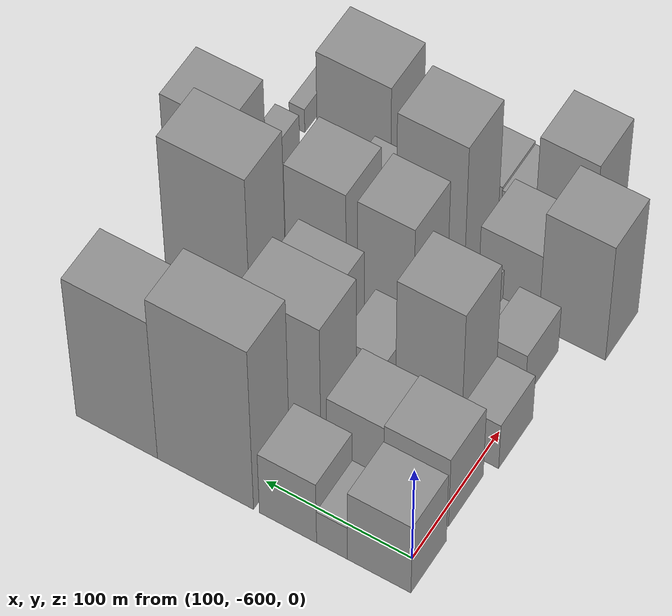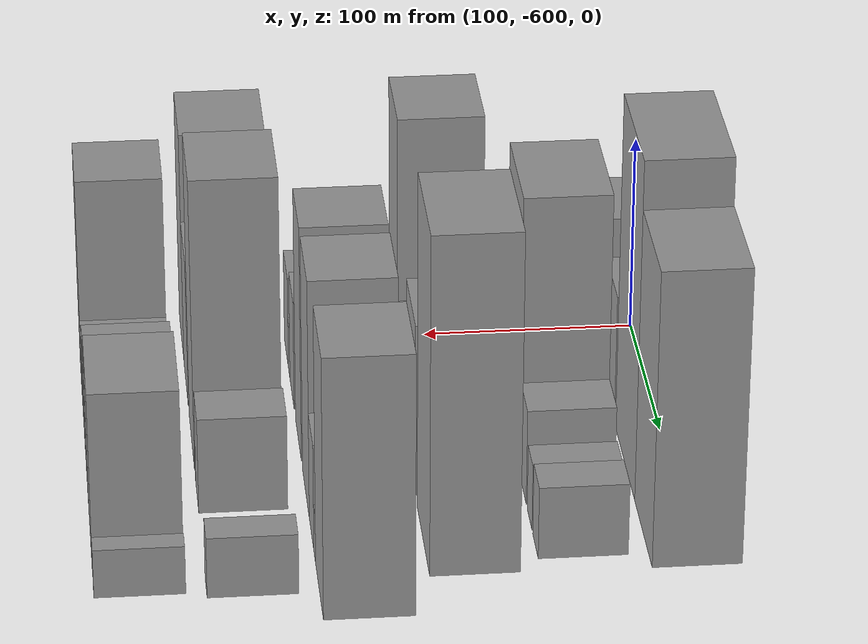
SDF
<sdf version="1.6">
 <world name="default">
  <model name="building_7">
   <static>1</static>
   <pose>100.0000 -589.4353 0 0.000000 0.000000 0.000000</pose>
   <link name="link">
    <pose>0 0 37.50 0 0 0</pose>
    <collision name="collision"><geometry><box><size>40.0000 42.8330 75.0000</size></box></geometry></collision>
    <visual name="visual">
     <cast_shadows>0</cast_shadows>
     <geometry><box><size>40.0000 42.8330 75.0000</size></box></geometry>
     <material>
      <script>
       <uri>model://grey_wall/materials/scripts</uri>
       <uri>model://grey_wall/materials/textures</uri>
       <name>vrc/grey_wall</name>
      </script>
     </material>
    </visual>
   </link>
  </model>
  <model name="building_8">
   <static>1</static>
   <pose>100.0000 -557.5764 0 0.000000 0.000000 0.000000</pose>
   <link name="link">
    <pose>0 0 18.00 0 0 0</pose>
    <collision name="collision"><geometry><box><size>40.0000 20.8849 36.0000</size></box></geometry></collision>
    <visual name="visual">
     <cast_shadows>0</cast_shadows>
     <geometry><box><size>40.0000 20.8849 36.0000</size></box></geometry>
     <material>
      <script>
       <uri>model://grey_wall/materials/scripts</uri>
       <uri>model://grey_wall/materials/textures</uri>
       <name>vrc/grey_wall</name>
      </script>
     </material>
    </visual>
   </link>
  </model>
  <model name="building_9">
   <static>1</static>
   <pose>100.0000 -527.5872 0 0.000000 0.000000 0.000000</pose>
   <link name="link">
    <pose>0 0 33.00 0 0 0</pose>
    <collision name="collision"><geometry><box><size>40.0000 39.0934 66.0000</size></box></geometry></collision>
    <visual name="visual">
     <cast_shadows>0</cast_shadows>
     <geometry><box><size>40.0000 39.0934 66.0000</size></box></geometry>
     <material>
      <script>
       <uri>model://grey_wall/materials/scripts</uri>
       <uri>model://grey_wall/materials/textures</uri>
       <name>vrc/grey_wall</name>
      </script>
     </material>
    </visual>
   </link>
  </model>
  <model name="building_10">
   <static>1</static>
   <pose>100.0000 -470.7364 0 0.000000 0.000000 0.000000</pose>
   <link name="link">
    <pose>0 0 85.50 0 0 0</pose>
    <collision name="collision"><geometry><box><size>40.0000 66.6082 171.0000</size></box></geometry></collision>
    <visual name="visual">
     <cast_shadows>0</cast_shadows>
     <geometry><box><size>40.0000 66.6082 171.0000</size></box></geometry>
     <material>
      <script>
       <uri>model://grey_wall/materials/scripts</uri>
       <uri>model://grey_wall/materials/textures</uri>
       <name>vrc/grey_wall</name>
      </script>
     </material>
    </visual>
   </link>
  </model>
  <model name="building_11">
   <static>1</static>
   <pose>100.0000 -408.8160 0 0.000000 0.000000 0.000000</pose>
   <link name="link">
    <pose>0 0 73.50 0 0 0</pose>
    <collision name="collision"><geometry><box><size>40.0000 57.2327 147.0000</size></box></geometry></collision>
    <visual name="visual">
     <cast_shadows>0</cast_shadows>
     <geometry><box><size>40.0000 57.2327 147.0000</size></box></geometry>
     <material>
      <script>
       <uri>model://grey_wall/materials/scripts</uri>
       <uri>model://grey_wall/materials/textures</uri>
       <name>vrc/grey_wall</name>
      </script>
     </material>
    </visual>
   </link>
  </model>
  <model name="building_52">
   <static>1</static>
   <pose>149.0000 -584.9630 0 0.000000 0.000000 0.000000</pose>
   <link name="link">
    <pose>0 0 37.50 0 0 0</pose>
    <collision name="collision"><geometry><box><size>40.0000 44.1342 75.0000</size></box></geometry></collision>
    <visual name="visual">
     <cast_shadows>0</cast_shadows>
     <geometry><box><size>40.0000 44.1342 75.0000</size></box></geometry>
     <material>
      <script>
       <uri>model://grey_wall/materials/scripts</uri>
       <uri>model://grey_wall/materials/textures</uri>
       <name>vrc/grey_wall</name>
      </script>
     </material>
    </visual>
   </link>
  </model>
  <model name="building_53">
   <static>1</static>
   <pose>149.0000 -543.5457 0 0.000000 0.000000 0.000000</pose>
   <link name="link">
    <pose>0 0 36.00 0 0 0</pose>
    <collision name="collision"><geometry><box><size>40.0000 38.7005 72.0000</size></box></geometry></collision>
    <visual name="visual">
     <cast_shadows>0</cast_shadows>
     <geometry><box><size>40.0000 38.7005 72.0000</size></box></geometry>
     <material>
      <script>
       <uri>model://grey_wall/materials/scripts</uri>
       <uri>model://grey_wall/materials/textures</uri>
       <name>vrc/grey_wall</name>
      </script>
     </material>
    </visual>
   </link>
  </model>
  <model name="building_54">
   <static>1</static>
   <pose>149.0000 -492.4049 0 0.000000 0.000000 0.000000</pose>
   <link name="link">
    <pose>0 0 70.50 0 0 0</pose>
    <collision name="collision"><geometry><box><size>40.0000 55.5810 141.0000</size></box></geometry></collision>
    <visual name="visual">
     <cast_shadows>0</cast_shadows>
     <geometry><box><size>40.0000 55.5810 141.0000</size></box></geometry>
     <material>
      <script>
       <uri>model://grey_wall/materials/scripts</uri>
       <uri>model://grey_wall/materials/textures</uri>
       <name>vrc/grey_wall</name>
      </script>
     </material>
    </visual>
   </link>
  </model>
  <model name="building_55">
   <static>1</static>
   <pose>149.0000 -451.6759 0 0.000000 0.000000 0.000000</pose>
   <link name="link">
    <pose>0 0 24.00 0 0 0</pose>
    <collision name="collision"><geometry><box><size>40.0000 25.8770 48.0000</size></box></geometry></collision>
    <visual name="visual">
     <cast_shadows>0</cast_shadows>
     <geometry><box><size>40.0000 25.8770 48.0000</size></box></geometry>
     <material>
      <script>
       <uri>model://grey_wall/materials/scripts</uri>
       <uri>model://grey_wall/materials/textures</uri>
       <name>vrc/grey_wall</name>
      </script>
     </material>
    </visual>
   </link>
  </model>
  <model name="building_56">
   <static>1</static>
   <pose>149.0000 -425.4327 0 0.000000 0.000000 0.000000</pose>
   <link name="link">
    <pose>0 0 16.50 0 0 0</pose>
    <collision name="collision"><geometry><box><size>40.0000 18.6094 33.0000</size></box></geometry></collision>
    <visual name="visual">
     <cast_shadows>0</cast_shadows>
     <geometry><box><size>40.0000 18.6094 33.0000</size></box></geometry>
     <material>
      <script>
       <uri>model://grey_wall/materials/scripts</uri>
       <uri>model://grey_wall/materials/textures</uri>
       <name>vrc/grey_wall</name>
      </script>
     </material>
    </visual>
   </link>
  </model>
  <model name="building_57">
   <static>1</static>
   <pose>149.0000 -402.5604 0 0.000000 0.000000 0.000000</pose>
   <link name="link">
    <pose>0 0 18.00 0 0 0</pose>
    <collision name="collision"><geometry><box><size>40.0000 21.1352 36.0000</size></box></geometry></collision>
    <visual name="visual">
     <cast_shadows>0</cast_shadows>
     <geometry><box><size>40.0000 21.1352 36.0000</size></box></geometry>
     <material>
      <script>
       <uri>model://grey_wall/materials/scripts</uri>
       <uri>model://grey_wall/materials/textures</uri>
       <name>vrc/grey_wall</name>
      </script>
     </material>
    </visual>
   </link>
  </model>
  <model name="building_104">
   <static>1</static>
   <pose>198.0000 -599.4129 0 0.000000 0.000000 0.000000</pose>
   <link name="link">
    <pose>0 0 24.00 0 0 0</pose>
    <collision name="collision"><geometry><box><size>40.0000 25.7780 48.0000</size></box></geometry></collision>
    <visual name="visual">
     <cast_shadows>0</cast_shadows>
     <geometry><box><size>40.0000 25.7780 48.0000</size></box></geometry>
     <material>
      <script>
       <uri>model://grey_wall/materials/scripts</uri>
       <uri>model://grey_wall/materials/textures</uri>
       <name>vrc/grey_wall</name>
      </script>
     </material>
    </visual>
   </link>
  </model>
  <model name="building_105">
   <static>1</static>
   <pose>198.0000 -564.0211 0 0.000000 0.000000 0.000000</pose>
   <link name="link">
    <pose>0 0 72.00 0 0 0</pose>
    <collision name="collision"><geometry><box><size>40.0000 45.0058 144.0000</size></box></geometry></collision>
    <visual name="visual">
     <cast_shadows>0</cast_shadows>
     <geometry><box><size>40.0000 45.0058 144.0000</size></box></geometry>
     <material>
      <script>
       <uri>model://grey_wall/materials/scripts</uri>
       <uri>model://grey_wall/materials/textures</uri>
       <name>vrc/grey_wall</name>
      </script>
     </material>
    </visual>
   </link>
  </model>
  <model name="building_106">
   <static>1</static>
   <pose>198.0000 -519.6504 0 0.000000 0.000000 0.000000</pose>
   <link name="link">
    <pose>0 0 27.00 0 0 0</pose>
    <collision name="collision"><geometry><box><size>40.0000 31.7355 54.0000</size></box></geometry></collision>
    <visual name="visual">
     <cast_shadows>0</cast_shadows>
     <geometry><box><size>40.0000 31.7355 54.0000</size></box></geometry>
     <material>
      <script>
       <uri>model://grey_wall/materials/scripts</uri>
       <uri>model://grey_wall/materials/textures</uri>
       <name>vrc/grey_wall</name>
      </script>
     </material>
    </visual>
   </link>
  </model>
  <model name="building_107">
   <static>1</static>
   <pose>198.0000 -473.3103 0 0.000000 0.000000 0.000000</pose>
   <link name="link">
    <pose>0 0 43.50 0 0 0</pose>
    <collision name="collision"><geometry><box><size>40.0000 44.9447 87.0000</size></box></geometry></collision>
    <visual name="visual">
     <cast_shadows>0</cast_shadows>
     <geometry><box><size>40.0000 44.9447 87.0000</size></box></geometry>
     <material>
      <script>
       <uri>model://grey_wall/materials/scripts</uri>
       <uri>model://grey_wall/materials/textures</uri>
       <name>vrc/grey_wall</name>
      </script>
     </material>
    </visual>
   </link>
  </model>
  <model name="building_108">
   <static>1</static>
   <pose>198.0000 -411.2551 0 0.000000 0.000000 0.000000</pose>
   <link name="link">
    <pose>0 0 84.00 0 0 0</pose>
    <collision name="collision"><geometry><box><size>40.0000 59.1658 168.0000</size></box></geometry></collision>
    <visual name="visual">
     <cast_shadows>0</cast_shadows>
     <geometry><box><size>40.0000 59.1658 168.0000</size></box></geometry>
     <material>
      <script>
       <uri>model://grey_wall/materials/scripts</uri>
       <uri>model://grey_wall/materials/textures</uri>
       <name>vrc/grey_wall</name>
      </script>
     </material>
    </visual>
   </link>
  </model>
  <model name="building_149">
   <static>1</static>
   <pose>247.0000 -587.6158 0 0.000000 0.000000 0.000000</pose>
   <link name="link">
    <pose>0 0 24.00 0 0 0</pose>
    <collision name="collision"><geometry><box><size>40.0000 28.2888 48.0000</size></box></geometry></collision>
    <visual name="visual">
     <cast_shadows>0</cast_shadows>
     <geometry><box><size>40.0000 28.2888 48.0000</size></box></geometry>
     <material>
      <script>
       <uri>model://grey_wall/materials/scripts</uri>
       <uri>model://grey_wall/materials/textures</uri>
       <name>vrc/grey_wall</name>
      </script>
     </material>
    </visual>
   </link>
  </model>
  <model name="building_150">
   <static>1</static>
   <pose>247.0000 -568.0713 0 0.000000 0.000000 0.000000</pose>
   <link name="link">
    <pose>0 0 13.50 0 0 0</pose>
    <collision name="collision"><geometry><box><size>40.0000 10.8002 27.0000</size></box></geometry></collision>
    <visual name="visual">
     <cast_shadows>0</cast_shadows>
     <geometry><box><size>40.0000 10.8002 27.0000</size></box></geometry>
     <material>
      <script>
       <uri>model://grey_wall/materials/scripts</uri>
       <uri>model://grey_wall/materials/textures</uri>
       <name>vrc/grey_wall</name>
      </script>
     </material>
    </visual>
   </link>
  </model>
  <model name="building_151">
   <static>1</static>
   <pose>247.0000 -548.1284 0 0.000000 0.000000 0.000000</pose>
   <link name="link">
    <pose>0 0 28.50 0 0 0</pose>
    <collision name="collision"><geometry><box><size>40.0000 29.0857 57.0000</size></box></geometry></collision>
    <visual name="visual">
     <cast_shadows>0</cast_shadows>
     <geometry><box><size>40.0000 29.0857 57.0000</size></box></geometry>
     <material>
      <script>
       <uri>model://grey_wall/materials/scripts</uri>
       <uri>model://grey_wall/materials/textures</uri>
       <name>vrc/grey_wall</name>
      </script>
     </material>
    </visual>
   </link>
  </model>
  <model name="building_152">
   <static>1</static>
   <pose>247.0000 -505.2057 0 0.000000 0.000000 0.000000</pose>
   <link name="link">
    <pose>0 0 60.00 0 0 0</pose>
    <collision name="collision"><geometry><box><size>40.0000 38.7596 120.0000</size></box></geometry></collision>
    <visual name="visual">
     <cast_shadows>0</cast_shadows>
     <geometry><box><size>40.0000 38.7596 120.0000</size></box></geometry>
     <material>
      <script>
       <uri>model://grey_wall/materials/scripts</uri>
       <uri>model://grey_wall/materials/textures</uri>
       <name>vrc/grey_wall</name>
      </script>
     </material>
    </visual>
   </link>
  </model>
  <model name="building_153">
   <static>1</static>
   <pose>247.0000 -456.5886 0 0.000000 0.000000 0.000000</pose>
   <link name="link">
    <pose>0 0 60.00 0 0 0</pose>
    <collision name="collision"><geometry><box><size>40.0000 42.4746 120.0000</size></box></geometry></collision>
    <visual name="visual">
     <cast_shadows>0</cast_shadows>
     <geometry><box><size>40.0000 42.4746 120.0000</size></box></geometry>
     <material>
      <script>
       <uri>model://grey_wall/materials/scripts</uri>
       <uri>model://grey_wall/materials/textures</uri>
       <name>vrc/grey_wall</name>
      </script>
     </material>
    </visual>
   </link>
  </model>
  <model name="building_154">
   <static>1</static>
   <pose>247.0000 -421.2764 0 0.000000 0.000000 0.000000</pose>
   <link name="link">
    <pose>0 0 27.00 0 0 0</pose>
    <collision name="collision"><geometry><box><size>40.0000 28.1497 54.0000</size></box></geometry></collision>
    <visual name="visual">
     <cast_shadows>0</cast_shadows>
     <geometry><box><size>40.0000 28.1497 54.0000</size></box></geometry>
     <material>
      <script>
       <uri>model://grey_wall/materials/scripts</uri>
       <uri>model://grey_wall/materials/textures</uri>
       <name>vrc/grey_wall</name>
      </script>
     </material>
    </visual>
   </link>
  </model>
  <model name="building_155">
   <static>1</static>
   <pose>247.0000 -401.9743 0 0.000000 0.000000 0.000000</pose>
   <link name="link">
    <pose>0 0 12.00 0 0 0</pose>
    <collision name="collision"><geometry><box><size>40.0000 10.4545 24.0000</size></box></geometry></collision>
    <visual name="visual">
     <cast_shadows>0</cast_shadows>
     <geometry><box><size>40.0000 10.4545 24.0000</size></box></geometry>
     <material>
      <script>
       <uri>model://grey_wall/materials/scripts</uri>
       <uri>model://grey_wall/materials/textures</uri>
       <name>vrc/grey_wall</name>
      </script>
     </material>
    </visual>
   </link>
  </model>
  <model name="building_156">
   <static>1</static>
   <pose>247.0000 -373.4769 0 0.000000 0.000000 0.000000</pose>
   <link name="link">
    <pose>0 0 64.50 0 0 0</pose>
    <collision name="collision"><geometry><box><size>40.0000 46.5403 129.0000</size></box></geometry></collision>
    <visual name="visual">
     <cast_shadows>0</cast_shadows>
     <geometry><box><size>40.0000 46.5403 129.0000</size></box></geometry>
     <material>
      <script>
       <uri>model://grey_wall/materials/scripts</uri>
       <uri>model://grey_wall/materials/textures</uri>
       <name>vrc/grey_wall</name>
      </script>
     </material>
    </visual>
   </link>
  </model>
  <model name="building_201">
   <static>1</static>
   <pose>296.0000 -606.1296 0 0.000000 0.000000 0.000000</pose>
   <link name="link">
    <pose>0 0 60.00 0 0 0</pose>
    <collision name="collision"><geometry><box><size>40.0000 45.9132 120.0000</size></box></geometry></collision>
    <visual name="visual">
     <cast_shadows>0</cast_shadows>
     <geometry><box><size>40.0000 45.9132 120.0000</size></box></geometry>
     <material>
      <script>
       <uri>model://grey_wall/materials/scripts</uri>
       <uri>model://grey_wall/materials/textures</uri>
       <name>vrc/grey_wall</name>
      </script>
     </material>
    </visual>
   </link>
  </model>
  <model name="building_202">
   <static>1</static>
   <pose>296.0000 -562.1209 0 0.000000 0.000000 0.000000</pose>
   <link name="link">
    <pose>0 0 37.50 0 0 0</pose>
    <collision name="collision"><geometry><box><size>40.0000 42.1042 75.0000</size></box></geometry></collision>
    <visual name="visual">
     <cast_shadows>0</cast_shadows>
     <geometry><box><size>40.0000 42.1042 75.0000</size></box></geometry>
     <material>
      <script>
       <uri>model://grey_wall/materials/scripts</uri>
       <uri>model://grey_wall/materials/textures</uri>
       <name>vrc/grey_wall</name>
      </script>
     </material>
    </visual>
   </link>
  </model>
  <model name="building_203">
   <static>1</static>
   <pose>296.0000 -507.0511 0 0.000000 0.000000 0.000000</pose>
   <link name="link">
    <pose>0 0 73.50 0 0 0</pose>
    <collision name="collision"><geometry><box><size>40.0000 48.0354 147.0000</size></box></geometry></collision>
    <visual name="visual">
     <cast_shadows>0</cast_shadows>
     <geometry><box><size>40.0000 48.0354 147.0000</size></box></geometry>
     <material>
      <script>
       <uri>model://grey_wall/materials/scripts</uri>
       <uri>model://grey_wall/materials/textures</uri>
       <name>vrc/grey_wall</name>
      </script>
     </material>
    </visual>
   </link>
  </model>
  <model name="building_204">
   <static>1</static>
   <pose>296.0000 -473.4166 0 0.000000 0.000000 0.000000</pose>
   <link name="link">
    <pose>0 0 9.00 0 0 0</pose>
    <collision name="collision"><geometry><box><size>40.0000 7.2337 18.0000</size></box></geometry></collision>
    <visual name="visual">
     <cast_shadows>0</cast_shadows>
     <geometry><box><size>40.0000 7.2337 18.0000</size></box></geometry>
     <material>
      <script>
       <uri>model://grey_wall/materials/scripts</uri>
       <uri>model://grey_wall/materials/textures</uri>
       <name>vrc/grey_wall</name>
      </script>
     </material>
    </visual>
   </link>
  </model>
  <model name="building_205">
   <static>1</static>
   <pose>296.0000 -456.9291 0 0.000000 0.000000 0.000000</pose>
   <link name="link">
    <pose>0 0 24.00 0 0 0</pose>
    <collision name="collision"><geometry><box><size>40.0000 25.7413 48.0000</size></box></geometry></collision>
    <visual name="visual">
     <cast_shadows>0</cast_shadows>
     <geometry><box><size>40.0000 25.7413 48.0000</size></box></geometry>
     <material>
      <script>
       <uri>model://grey_wall/materials/scripts</uri>
       <uri>model://grey_wall/materials/textures</uri>
       <name>vrc/grey_wall</name>
      </script>
     </material>
    </visual>
   </link>
  </model>
  <model name="building_206">
   <static>1</static>
   <pose>296.0000 -381.1365 0 0.000000 0.000000 0.000000</pose>
   <link name="link">
    <pose>0 0 15.00 0 0 0</pose>
    <collision name="collision"><geometry><box><size>40.0000 17.2813 30.0000</size></box></geometry></collision>
    <visual name="visual">
     <cast_shadows>0</cast_shadows>
     <geometry><box><size>40.0000 17.2813 30.0000</size></box></geometry>
     <material>
      <script>
       <uri>model://grey_wall/materials/scripts</uri>
       <uri>model://grey_wall/materials/textures</uri>
       <name>vrc/grey_wall</name>
      </script>
     </material>
    </visual>
   </link>
  </model>
  <model name="building_246">
   <static>1</static>
   <pose>345.0000 -571.6766 0 0.000000 0.000000 0.000000</pose>
   <link name="link">
    <pose>0 0 57.00 0 0 0</pose>
    <collision name="collision"><geometry><box><size>40.0000 40.3655 114.0000</size></box></geometry></collision>
    <visual name="visual">
     <cast_shadows>0</cast_shadows>
     <geometry><box><size>40.0000 40.3655 114.0000</size></box></geometry>
     <material>
      <script>
       <uri>model://grey_wall/materials/scripts</uri>
       <uri>model://grey_wall/materials/textures</uri>
       <name>vrc/grey_wall</name>
      </script>
     </material>
    </visual>
   </link>
  </model>
  <model name="building_247">
   <static>1</static>
   <pose>345.0000 -539.8760 0 0.000000 0.000000 0.000000</pose>
   <link name="link">
    <pose>0 0 21.00 0 0 0</pose>
    <collision name="collision"><geometry><box><size>40.0000 23.2356 42.0000</size></box></geometry></collision>
    <visual name="visual">
     <cast_shadows>0</cast_shadows>
     <geometry><box><size>40.0000 23.2356 42.0000</size></box></geometry>
     <material>
      <script>
       <uri>model://grey_wall/materials/scripts</uri>
       <uri>model://grey_wall/materials/textures</uri>
       <name>vrc/grey_wall</name>
      </script>
     </material>
    </visual>
   </link>
  </model>
  <model name="building_248">
   <static>1</static>
   <pose>345.0000 -515.2051 0 0.000000 0.000000 0.000000</pose>
   <link name="link">
    <pose>0 0 22.50 0 0 0</pose>
    <collision name="collision"><geometry><box><size>40.0000 26.1063 45.0000</size></box></geometry></collision>
    <visual name="visual">
     <cast_shadows>0</cast_shadows>
     <geometry><box><size>40.0000 26.1063 45.0000</size></box></geometry>
     <material>
      <script>
       <uri>model://grey_wall/materials/scripts</uri>
       <uri>model://grey_wall/materials/textures</uri>
       <name>vrc/grey_wall</name>
      </script>
     </material>
    </visual>
   </link>
  </model>
  <model name="building_249">
   <static>1</static>
   <pose>345.0000 -477.6194 0 0.000000 0.000000 0.000000</pose>
   <link name="link">
    <pose>0 0 34.50 0 0 0</pose>
    <collision name="collision"><geometry><box><size>40.0000 41.0650 69.0000</size></box></geometry></collision>
    <visual name="visual">
     <cast_shadows>0</cast_shadows>
     <geometry><box><size>40.0000 41.0650 69.0000</size></box></geometry>
     <material>
      <script>
       <uri>model://grey_wall/materials/scripts</uri>
       <uri>model://grey_wall/materials/textures</uri>
       <name>vrc/grey_wall</name>
      </script>
     </material>
    </visual>
   </link>
  </model>
  <model name="building_250">
   <static>1</static>
   <pose>345.0000 -423.5269 0 0.000000 0.000000 0.000000</pose>
   <link name="link">
    <pose>0 0 45.00 0 0 0</pose>
    <collision name="collision"><geometry><box><size>40.0000 53.1202 90.0000</size></box></geometry></collision>
    <visual name="visual">
     <cast_shadows>0</cast_shadows>
     <geometry><box><size>40.0000 53.1202 90.0000</size></box></geometry>
     <material>
      <script>
       <uri>model://grey_wall/materials/scripts</uri>
       <uri>model://grey_wall/materials/textures</uri>
       <name>vrc/grey_wall</name>
      </script>
     </material>
    </visual>
   </link>
  </model>
  <model name="building_251">
   <static>1</static>
   <pose>345.0000 -382.3910 0 0.000000 0.000000 0.000000</pose>
   <link name="link">
    <pose>0 0 12.00 0 0 0</pose>
    <collision name="collision"><geometry><box><size>40.0000 11.1516 24.0000</size></box></geometry></collision>
    <visual name="visual">
     <cast_shadows>0</cast_shadows>
     <geometry><box><size>40.0000 11.1516 24.0000</size></box></geometry>
     <material>
      <script>
       <uri>model://grey_wall/materials/scripts</uri>
       <uri>model://grey_wall/materials/textures</uri>
       <name>vrc/grey_wall</name>
      </script>
     </material>
    </visual>
   </link>
  </model>
 </world>
</sdf>
